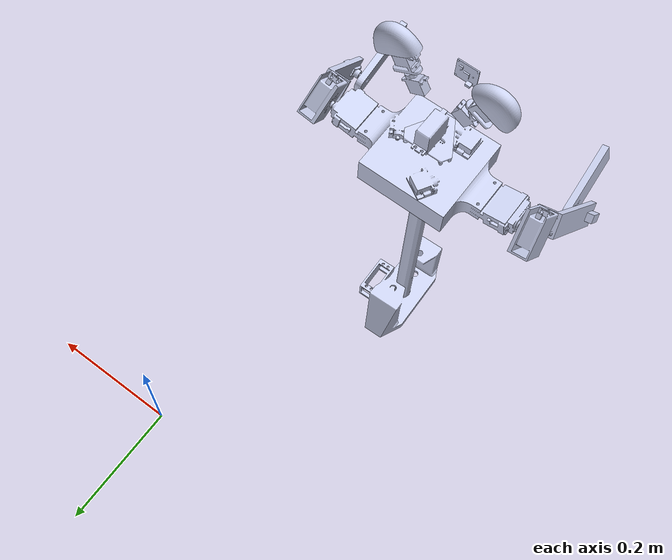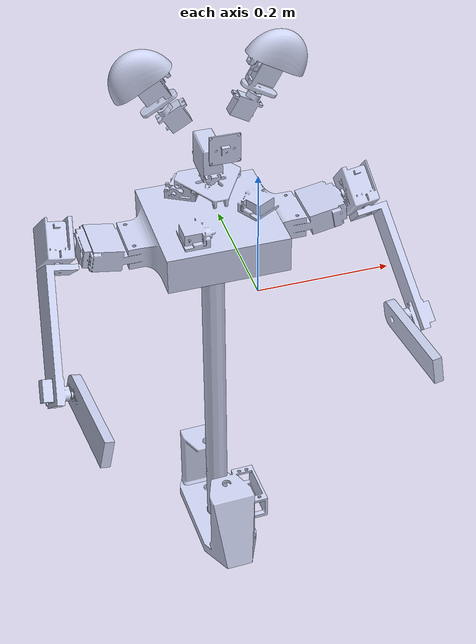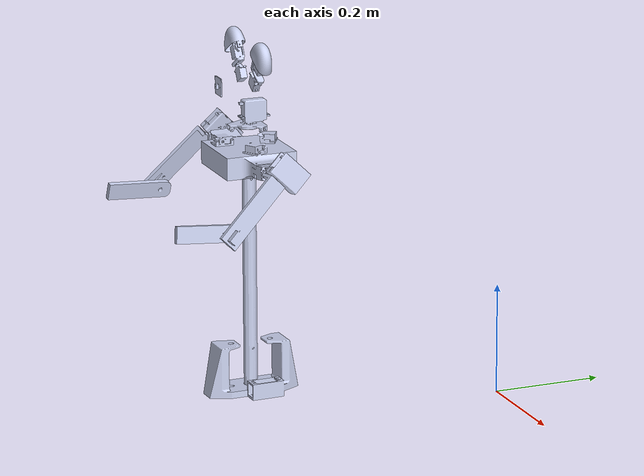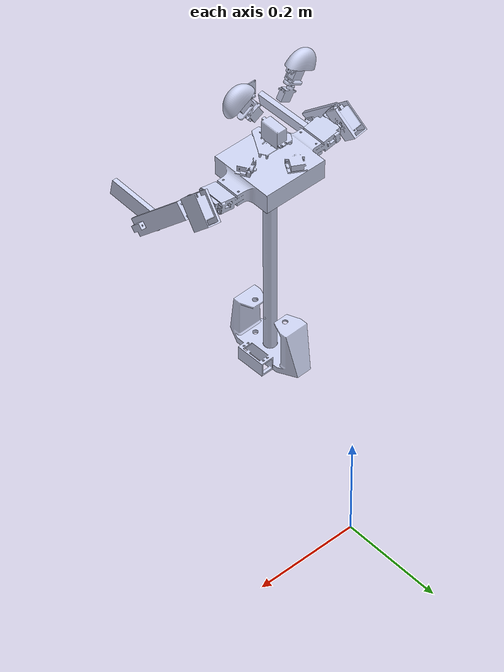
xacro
<?xml version="1.0"?>
<robot xmlns:xacro="http://www.ros.org/wiki/xacro" name="robot">
    <xacro:arg name="initial_positions_file" default="initial_positions.yaml" />

    <!-- Import robot urdf file -->
    <xacro:include filename="$(find bearmax_description)/urdf/robot.urdf.xacro" />

    <!-- Import control_xacro -->
    <xacro:include filename="robot.ros2_control.xacro" />

    <xacro:robot_ros2_control name="FakeSystem" initial_positions_file="$(arg initial_positions_file)"/>

</robot>

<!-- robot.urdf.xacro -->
<robot xmlns:xacro="http://www.ros.org/wiki/xacro" name="robot">
    <xacro:arg name="use_ros2_control" default="true"/>
    <xacro:arg name="sim_mode" default="false"/>

    <xacro:include filename="bearmax_description.urdf.xacro" />

</robot>

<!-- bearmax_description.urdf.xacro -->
<robot xmlns:xacro="http://www.ros.org/wiki/xacro">
  <link
    name="base_link">
    <inertial>
      <origin
        xyz="-0.17187 -0.4 0.051344"
        rpy="0 0 0" />
      <mass
        value="0.50183" />
      <inertia
        ixx="0.0012683"
        ixy="9.452E-06"
        ixz="-1.8359E-05"
        iyy="0.0011449"
        iyz="-2.4791E-06"
        izz="0.0003814" />
    </inertial>
    <visual>
      <origin
        xyz="0 0 0"
        rpy="0 0 0" />
      <geometry>
        <mesh
            filename="package://bearmax_description/meshes/base_link.STL"
        />
      </geometry>
      <material
        name="">
        <color
          rgba="0.79216 0.81961 0.93333 1" />
      </material>
    </visual>
    <collision>
      <origin
        xyz="0 0 0"
        rpy="0 0 0" />
      <geometry>
        <mesh
          filename="package://bearmax_description/meshes/base_link.STL" />
      </geometry>
    </collision>
    <!-- To prevent the robot from tipping over cause of bad interals -->
    <collision>
      <origin
          xyz="-0.17961 -0.40208 -0.01"
          rpy="0 0 0"
      />
      <geometry>
          <box size="0.3 0.3 0.01"/>
      </geometry>
    </collision>
  </link>
  <link
    name="chassis_link">
    <inertial>
      <origin
        xyz="2.0524E-09 0.19976 9.8855E-09"
        rpy="0 0 0" />
      <mass
        value="0.057634" />
      <inertia
        ixx="0.00076957"
        ixy="-5.5733E-12"
        ixz="2.353E-12"
        iyy="7.6799E-06"
        iyz="-6.8567E-11"
        izz="0.00076959" />
    </inertial>
    <visual>
      <origin
        xyz="0 0 0"
        rpy="0 0 0" />
      <geometry>
        <mesh
          filename="package://bearmax_description/meshes/chassis_link.STL" />
      </geometry>
      <material
        name="">
        <color
          rgba="0.79216 0.81961 0.93333 1" />
      </material>
    </visual>
    <collision>
      <origin
        xyz="0 0 0"
        rpy="0 0 0" />
      <geometry>
        <mesh
          filename="package://bearmax_description/meshes/chassis_link.STL" />
      </geometry>
    </collision>
  </link>
  <joint
    name="chassis_joint"
    type="revolute">
    <origin
      xyz="-0.17961 -0.40208 0.012"
      rpy="1.5708 0 ${pi/2}" />
    <parent
      link="base_link" />
    <child
      link="chassis_link" />
    <axis
      xyz="0 1 0" />
    <limit
      lower="-${pi/2}"
      upper="${pi/2}"
      effort="10"
      velocity="100" />
  </joint>
  <link
    name="torso_link">
    <inertial>
      <origin
        xyz="-0.032811 0.026124 -0.043368"
        rpy="${pi} 0 0" />
      <mass
        value="2.6697" />
      <inertia
        ixx="0.0040411"
        ixy="-1.5861E-08"
        ixz="1.3582E-07"
        iyy="0.0069722"
        iyz="-2.7575E-08"
        izz="0.003713" />
    </inertial>
    <visual>
      <origin
        xyz="0 0 0"
          rpy="${pi} 0 0" />
      <geometry>
        <mesh
          filename="package://bearmax_description/meshes/torso_link.STL" />
      </geometry>
      <material
        name="">
        <color
          rgba="0.79216 0.81961 0.93333 1" />
      </material>
    </visual>
    <collision>
      <origin
        xyz="0 0 0"
          rpy="${pi} 0 0" />
      <geometry>
        <mesh
          filename="package://bearmax_description/meshes/torso_link.STL" />
      </geometry>
    </collision>
  </link>
  <joint
    name="torso_joint"
    type="fixed">
    <origin
      xyz="0 0.4005 0"
      rpy="3.1416 -${pi/2} 0" />
    <parent
      link="chassis_link" />
    <child
      link="torso_link" />
    <axis
      xyz="0 0 0" />
  </joint>
  <link
    name="left_arm_shoulder_link">
    <inertial>
      <origin
        xyz="0.0012848 -0.037721 -0.00075821"
        rpy="0 0 0" />
      <mass
        value="0.089647" />
      <inertia
        ixx="2.3078E-05"
        ixy="3.3014E-07"
        ixz="3.3653E-07"
        iyy="3.1141E-05"
        iyz="2.7465E-07"
        izz="1.7517E-05" />
    </inertial>
    <visual>
      <origin
        xyz="0 0 0"
        rpy="0 0 0" />
      <geometry>
        <mesh
          filename="package://bearmax_description/meshes/left_arm_shoulder_link01.STL" />
      </geometry>
      <material
        name="">
        <color
          rgba="0.79216 0.81961 0.93333 1" />
      </material>
    </visual>
    <collision>
      <origin
        xyz="0 0 0"
        rpy="0 0 0" />
      <geometry>
        <mesh
          filename="package://bearmax_description/meshes/left_arm_shoulder_link01.STL" />
      </geometry>
    </collision>
  </link>
  <joint
    name="left_arm_shoulder_joint"
    type="revolute">
    <origin
        xyz="0.14497 -0.027824 0.0102"
        rpy="${pi/2} ${3*pi/4} 1.3963"
    />
    <!--origin
      xyz="0.1153 0.022388 -0.010325"
      rpy="3.1416 -0.080918 -1.3963" /-->
    <parent
      link="torso_link" />
    <child
      link="left_arm_shoulder_link" />
    <axis
      xyz="0 0 1" />
    <limit
      lower="-${pi/2}"
      upper="${pi/2}"
      effort="10"
      velocity="100" />
  </joint>
  <link
    name="left_arm_rotator_link">
    <inertial>
      <origin
        xyz="-0.065761 0.10061 -0.029311"
        rpy="0 0 0" />
      <mass
        value="0.055975" />
      <inertia
        ixx="7.2471E-05"
        ixy="2.8953E-06"
        ixz="9.0062E-07"
        iyy="6.858E-06"
        iyz="2.8953E-06"
        izz="7.2471E-05" />
    </inertial>
    <visual>
      <origin
          xyz="0.0575 0.0325 -0.02125"
          rpy="0 ${pi} ${pi}"
      />
      <geometry>
        <mesh
          filename="package://bearmax_description/meshes/left_arm_rotator_link.STL" />
      </geometry>
      <material
        name="">
        <color
          rgba="0.79216 0.81961 0.93333 1" />
      </material>
    </visual>
    <collision>
      <origin
          xyz="0.0575 0.0325 -0.02125"
          rpy="0 ${pi} ${pi}"
      />
      <geometry>
        <mesh
          filename="package://bearmax_description/meshes/left_arm_rotator_link.STL" />
      </geometry>
    </collision>
  </link>
  <joint
    name="left_arm_rotator_joint"
    type="revolute">
    <origin
        xyz="0.012 0.0319 0.019941"
        rpy="0 0.86598 ${pi}"
    />
    <!--origin
      xyz="0.012 -0.0319 -0.019941"
      rpy="0 -0.54847 ${pi/2}" /-->
    <parent
      link="left_arm_shoulder_link" />
    <child
      link="left_arm_rotator_link" />
    <axis
      xyz="0 1 0" />
    <limit
      lower="-${pi/2}"
      upper="${pi/2}"
      effort="10"
      velocity="100" />
  </joint>
  <link
    name="left_arm_elbow_link">
    <inertial>
      <origin
        xyz="0.174014666767699 -0.0223949045310038 0.0591303961422717"
        rpy="0 0 0" />
      <mass
        value="0.0356564342065887" />
      <inertia
        ixx="2.91755755317523E-06"
        ixy="5.70063169883685E-08"
        ixz="4.98690647695969E-20"
        iyy="4.3073139448888E-05"
        iyz="-5.9292306307801E-21"
        izz="4.0731009181031E-05" />
    </inertial>
    <visual>
      <origin
        xyz="-0.13325 0.035 -0.05875"
        rpy="0 0 0" />
      <geometry>
        <mesh
          filename="package://bearmax_description/meshes/left_arm_elbow_link.STL" />
      </geometry>
      <material
        name="">
        <color
          rgba="0.792156862745098 0.819607843137255 0.933333333333333 1" />
      </material>
    </visual>
    <collision>
      <origin
        xyz="-0.13325 0.035 -0.05875"
        rpy="0 0 0" />
      <geometry>
        <mesh
          filename="package://bearmax_description/meshes/left_arm_elbow_link.STL" />
      </geometry>
    </collision>
  </link>
  <joint
    name="left_arm_elbow_joint"
    type="revolute">
    <origin
        xyz="-0.0018031 -0.112 0.0018031"
        rpy="${pi+2.1424} 0.57212 -2.2705"
    />
    <!--origin
      xyz="-0.020548 0 -0.012555"
      rpy="2.2751 -0.38212 1.9844" /-->
    <parent
      link="left_arm_rotator_link" />
    <child
      link="left_arm_elbow_link" />
    <axis
      xyz="0 1 0" />
    <limit
      lower="-${pi/2}"
      upper="${pi/2}"
      effort="10"
      velocity="100" />
  </joint>
  <link name="left_arm_end_link">
  </link>
  <joint
      name="left_arm_end_joint"
      type="fixed">
    <origin
        xyz="0.1 0.0125 0"
    />
    <parent link="left_arm_elbow_link" />
    <child link="left_arm_end_link" />
  </joint>
  <link
    name="right_arm_shoulder_link">
    <inertial>
      <origin
        xyz="0.00074988 0.0012707 -0.018533"
        rpy="0 0 0" />
      <mass
        value="0.090643" />
      <inertia
        ixx="1.756E-05"
        ixy="-3.3653E-07"
        ixz="-2.7465E-07"
        iyy="2.312E-05"
        iyz="3.3014E-07"
        izz="3.1224E-05" />
    </inertial>
    <visual>
      <origin
        xyz="0 0 0"
        rpy="0 0 0" />
      <geometry>
        <mesh
          filename="package://bearmax_description/meshes/right_arm_shoulder_link.STL" />
      </geometry>
      <material
        name="">
        <color
          rgba="0.79216 0.81961 0.93333 1" />
      </material>
    </visual>
    <collision>
      <origin
        xyz="0 0 0"
        rpy="0 0 0" />
      <geometry>
        <mesh
          filename="package://bearmax_description/meshes/right_arm_shoulder_link.STL" />
      </geometry>
    </collision>
  </link>
  <joint
    name="right_arm_shoulder_joint"
    type="revolute">
    <origin
        xyz="-0.14497 -0.027824 0.0102"
        rpy="-${pi/2} ${pi/4} -1.3963"
    />
    <!--origin
      xyz="-0.14497 0.027824 -0.0102"
      rpy="1.5708 -1.5367 1.3963" /-->
    <parent
      link="torso_link" />
    <child
      link="right_arm_shoulder_link" />
    <axis
      xyz="0 0 1" />
    <limit
      lower="-${pi/2}"
      upper="${pi/2}"
      effort="10"
      velocity="100" />
  </joint>
  <link
    name="right_arm_rotator_link">
    <inertial>
      <origin
        xyz="0.00821004209420206 -0.0688462147120627 -0.00821004209420173"
        rpy="0 0 0" />
      <mass
        value="0.05597466334379" />
      <inertia
        ixx="7.247118652597E-05"
        ixy="2.83145992905539E-06"
        ixz="-9.00615014902901E-07"
        iyy="6.85800622969299E-06"
        iyz="-2.83145992905515E-06"
        izz="7.247118652597E-05" />
    </inertial>
    <visual>
      <origin
        xyz="0 0 0"
        rpy="0 0 0" />
      <geometry>
        <mesh
          filename="package://bearmax_description/meshes/right_arm_rotator_link.STL" />
      </geometry>
      <material
        name="">
        <color
          rgba="0.792156862745098 0.819607843137255 0.933333333333333 1" />
      </material>
    </visual>
    <collision>
      <origin
        xyz="0 0 0"
        rpy="0 0 0" />
      <geometry>
        <mesh
          filename="package://bearmax_description/meshes/right_arm_rotator_link.STL" />
      </geometry>
    </collision>
  </link>
  <joint
    name="right_arm_rotator_joint"
    type="revolute">
    <origin
      xyz="0.012 0.0319 -0.019941"
        rpy="0 0.86598 ${pi}" />
    <parent
      link="right_arm_shoulder_link" />
    <child
      link="right_arm_rotator_link" />
    <axis
      xyz="0 1 0" />
    <limit
      lower="-${pi/2}"
      upper="${pi/2}"
      effort="10"
      velocity="100" />
  </joint>
  <link
    name="right_arm_elbow_link">
    <inertial>
      <origin
        xyz="0.0405860587058997 0.00726331258179902 1.66533453693773E-16"
        rpy="0 0 0" />
      <mass
        value="0.0356564342065888" />
      <inertia
        ixx="2.91755755317524E-06"
        ixy="5.7006316988408E-08"
        ixz="2.57286257728494E-20"
        iyy="4.30731394488881E-05"
        iyz="-2.96461531539005E-21"
        izz="4.07310091810311E-05" />
    </inertial>
    <visual>
      <origin
        xyz="0 0 0"
        rpy="0 0 0" />
      <geometry>
        <mesh
          filename="package://bearmax_description/meshes/right_arm_elbow_link.STL" />
      </geometry>
      <material
        name="">
        <color
          rgba="0.792156862745098 0.819607843137255 0.933333333333333 1" />
      </material>
    </visual>
    <collision>
      <origin
        xyz="0 0 0"
        rpy="0 0 0" />
      <geometry>
        <mesh
          filename="package://bearmax_description/meshes/right_arm_elbow_link.STL" />
      </geometry>
    </collision>
  </link>
  <joint
    name="right_arm_elbow_joint"
    type="revolute">
    <origin
      xyz="-0.0018031 -0.123 0.0018031"
      rpy="2.1424 0.57212 -2.2705" />
    <parent
      link="right_arm_rotator_link" />
    <child
      link="right_arm_elbow_link" />
    <axis
      xyz="0 1 0" />
    <limit
      lower="-${pi/2}"
      upper="${pi/2}"
      effort="10"
      velocity="100" />
  </joint>
  <link name="right_arm_end_link">
  </link>
  <joint
      name="right_arm_end_joint"
      type="fixed">
    <origin
        xyz="0.1 0.0075 0"
    />
    <parent link="right_arm_elbow_link" />
    <child link="right_arm_end_link" />
  </joint>
  <link
    name="head_platform_link">
    <inertial>
      <origin
        xyz="-7.31297958072585E-05 0.0396567026441625 0.00529007551073074"
        rpy="0 0 0" />
      <mass
        value="0.0601949035323982" />
      <inertia
        ixx="1.25623690370595E-05"
        ixy="8.6971770268358E-10"
        ixz="4.06002667064018E-08"
        iyy="1.23679785179065E-05"
        iyz="-6.29137809995314E-08"
        izz="9.6259813450868E-06" />
    </inertial>
    <visual>
      <geometry>
        <mesh
          filename="package://bearmax_description/meshes/head_platform_link.STL" />
      </geometry>
      <material
        name="">
        <color
          rgba="0.792156862745098 0.819607843137255 0.933333333333333 1" />
      </material>
    </visual>
    <collision>
      <geometry>
        <mesh
          filename="package://bearmax_description/meshes/head_platform_link.STL" />
      </geometry>
    </collision>
  </link>
  <!-- Head Platform Joints -->
  <joint name="head_platform_pitch_joint" type="revolute">
    <origin
        xyz="0 -0.074456 0"
        rpy="0 0 ${pi}"
    />
    <parent link="torso_link" />
    <child link="head_platform_roll_link" />
    <limit
        lower="-${pi/6}"
        upper="${pi/6}"
        effort="10"
        velocity="100"
    />
    <axis xyz="1 0 0" />
  </joint>
  <link name="head_platform_roll_link"></link>
  <joint name="head_platform_roll_joint" type="revolute">
    <origin
        xyz="0 0 0"
        rpy="0 0 0"
    />
    <parent link="head_platform_roll_link" />
    <child link="head_platform_yaw_link" />
    <limit
        lower="-${pi/6}"
        upper="${pi/6}"
        effort="10"
        velocity="100"
    />
    <axis xyz="0 0 1" />
  </joint>
  <link name="head_platform_yaw_link"></link>
  <joint name="head_platform_yaw_joint" type="revolute">
    <origin
        xyz="0 0 0"
        rpy="0 0 0"
    />
    <parent link="head_platform_yaw_link" />
    <child link="head_platform_link" />
    <limit
        lower="-${pi/2}"
        upper="${pi/2}"
        effort="10"
        velocity="100"
    />
    <axis xyz="0 1 0" />
  </joint>
  <link
    name="left_ear_rotator_link">
    <inertial>
      <origin
        xyz="0.00502691845975367 0.0139045164812473 5.9612828079425E-07"
        rpy="0 0 0" />
      <mass
        value="0.0328637128190072" />
      <inertia
        ixx="5.69258309184449E-06"
        ixy="1.36073337822786E-07"
        ixz="-3.82205780616497E-10"
        iyy="3.92546450693281E-06"
        iyz="6.88676185297206E-10"
        izz="6.89654509433495E-06" />
    </inertial>
    <visual>
      <origin
          xyz="-0.0225 -0.01003 0"
          rpy="0 0 0"
      />
      <geometry>
        <mesh
          filename="package://bearmax_description/meshes/left_ear_rotator_link.STL" />
      </geometry>
      <material
        name="">
        <color
          rgba="0.792156862745098 0.819607843137255 0.933333333333333 1" />
      </material>
    </visual>
    <collision>
      <origin
        xyz="-0.0225 -0.01003 0"
        rpy="0 0 0" />
      <geometry>
        <mesh
          filename="package://bearmax_description/meshes/left_ear_rotator_link.STL" />
      </geometry>
    </collision>
  </link>
  <joint
    name="left_ear_rotator_joint"
    type="revolute">
    <!--origin
        xyz="-0.068776 0.11753 -0.0008258"
        rpy="-0.00010149 -0.0069114 -1.0472"
    /-->
    <origin
        xyz="-0.048776 0.1025 -0.0008258"
        rpy="-0.00010149 -0.0069114 -1.0472"
    />
    <parent
      link="head_platform_link" />
    <child
      link="left_ear_rotator_link" />
    <axis
      xyz="1 0 0" />
    <limit
      lower="-${pi/2}"
      upper="${pi/2}"
      effort="10"
      velocity="100" />
  </joint>
  <link
    name="left_ear_pitch_link">
    <inertial>
      <origin
        xyz="-0.0125749268028691 -0.0153351392261876 4.07502354082823E-08"
        rpy="0 0 0" />
      <mass
        value="0.0244707690957446" />
      <inertia
        ixx="3.95605162092786E-06"
        ixy="-7.83673188173205E-08"
        ixz="3.26635155513733E-11"
        iyy="2.68690704961205E-06"
        iyz="3.32835460837766E-10"
        izz="5.27403767528447E-06" />
    </inertial>
    <visual>
      <origin
        xyz="0 0 0"
        rpy="0 0 0" />
      <geometry>
        <mesh
          filename="package://bearmax_description/meshes/left_ear_pitch_link.STL" />
      </geometry>
      <material
        name="">
        <color
          rgba="0.792156862745098 0.819607843137255 0.933333333333333 1" />
      </material>
    </visual>
    <collision>
      <origin
        xyz="0 0 0"
        rpy="0 0 0" />
      <geometry>
        <mesh
          filename="package://bearmax_description/meshes/left_ear_pitch_link.STL" />
      </geometry>
    </collision>
  </link>
  <joint
    name="left_ear_pitch_joint"
    type="revolute">
    <origin
      xyz="-0.0287 0.01955 0"
      rpy="-${pi} -0.0069114 ${pi}" />
    <parent
      link="left_ear_rotator_link" />
    <child
      link="left_ear_pitch_link" />
    <axis
      xyz="0 1 0" />
    <limit
      lower="-${pi/2}"
      upper="${pi/2}"
      effort="10"
      velocity="100" />
  </joint>
  <link
    name="right_ear_rotator_link">
    <inertial>
      <origin
        xyz="0.00355451410535768 0.018498083436896 5.92492162221347E-07"
        rpy="0 0 0" />
      <mass
        value="0.0328637181166499" />
      <inertia
        ixx="3.92546786501222E-06"
        ixy="-1.36072839709065E-07"
        ixz="6.84900408034018E-10"
        iyy="5.6925929857096E-06"
        iyz="3.80134284652457E-10"
        izz="6.8965541820296E-06" />
    </inertial>
    <visual>
      <origin
        xyz="0 0 0"
        rpy="0 0 0" />
      <geometry>
        <mesh
          filename="package://bearmax_description/meshes/right_ear_rotator_link.STL" />
      </geometry>
      <material
        name="">
        <color
          rgba="0.792156862745098 0.819607843137255 0.933333333333333 1" />
      </material>
    </visual>
    <collision>
      <origin
        xyz="0 0 0"
        rpy="0 0 0" />
      <geometry>
        <mesh
          filename="package://bearmax_description/meshes/right_ear_rotator_link.STL" />
      </geometry>
    </collision>
  </link>
  <joint
    name="right_ear_rotator_joint"
    type="revolute">
    <origin
      xyz="0.048051 0.10233 0.00066426"
      rpy="3.1347 -0.00010149 2.618" />
    <parent
      link="head_platform_link" />
    <child
      link="right_ear_rotator_link" />
    <axis
      xyz="0 1 0" />
    <limit
      lower="-${pi/2}"
      upper="${pi/2}"
      effort="10"
      velocity="100" />
  </joint>
  <link
    name="right_ear_pitch_link">
    <inertial>
      <origin
        xyz="-0.0125750469388256 -0.0153350824517368 3.54830002047279E-08"
        rpy="0 0 0" />
      <mass
        value="0.0244706931114196" />
      <inertia
        ixx="3.95601959100734E-06"
        ixy="-7.83656460052213E-08"
        ixz="3.58100063920109E-11"
        iyy="2.68688486565731E-06"
        iyz="3.30338149730035E-10"
        izz="5.27397751288778E-06" />
    </inertial>
    <visual>
      <origin
        xyz="0 0 0"
        rpy="0 0 0" />
      <geometry>
        <mesh
          filename="package://bearmax_description/meshes/right_ear_pitch_link.STL" />
      </geometry>
      <material
        name="">
        <color
          rgba="0.792156862745098 0.819607843137255 0.933333333333333 1" />
      </material>
    </visual>
    <collision>
      <origin
        xyz="0 0 0"
        rpy="0 0 0" />
      <geometry>
        <mesh
          filename="package://bearmax_description/meshes/right_ear_pitch_link.STL" />
      </geometry>
    </collision>
  </link>
  <joint
    name="right_ear_pitch_joint"
    type="revolute">
    <origin
      xyz="0.01955 0.0287 0"
      rpy="-${pi} -0.0069114 ${pi/2}" />
    <parent
      link="right_ear_rotator_link" />
    <child
      link="right_ear_pitch_link" />
    <axis
      xyz="0 1 0" />
    <limit
      lower="-${pi/2}"
      upper="${pi/2}"
      effort="10"
      velocity="100" />
  </joint>
  <link
    name="camera_link">
    <inertial>
      <origin
        xyz="-0.00029051 0.00086498 0.00090745"
        rpy="0 0 0" />
      <mass
        value="0.0022578" />
      <inertia
        ixx="1.6797E-07"
        ixy="-3.3968E-09"
        ixz="1.6789E-08"
        iyy="3.0186E-07"
        iyz="8.0263E-09"
        izz="1.4969E-07" />
    </inertial>
    <visual>
      <origin
        xyz="0 0 0"
        rpy="0 0 0" />
      <geometry>
        <mesh
          filename="package://bearmax_description/meshes/camera_link.STL" />
      </geometry>
      <material
        name="">
        <color
          rgba="0.79216 0.81961 0.93333 1" />
      </material>
    </visual>
    <collision>
      <origin
        xyz="0 0 0"
        rpy="0 0 0" />
      <geometry>
        <mesh
          filename="package://bearmax_description/meshes/camera_link.STL" />
      </geometry>
    </collision>
  </link>
  <joint
    name="camera_joint"
    type="fixed">
    <origin
      xyz="0.0007478 0.0791 -0.054095"
      rpy="-${pi/2} 0.013823 ${pi}" />
    <parent
      link="head_platform_link" />
    <child
      link="camera_link" />
    <axis
      xyz="0 0 0" />
  </joint>
  <link name="camera_optical_link"></link>
  <joint name="camera_optical_joint" type="fixed">
	<parent link="camera_link"/>
	<child link="camera_optical_link"/>
    <origin xyz="0 0 0" rpy="${-pi/2} 0 0"/>
  </joint>
</robot>
